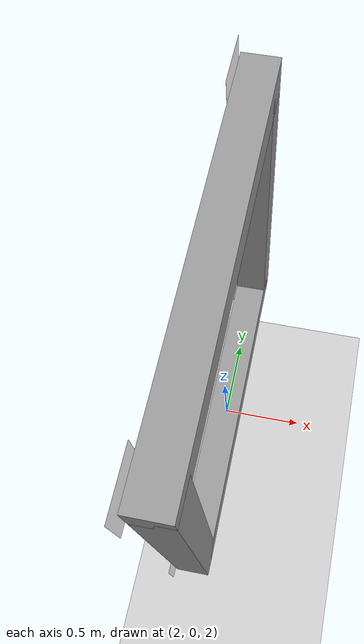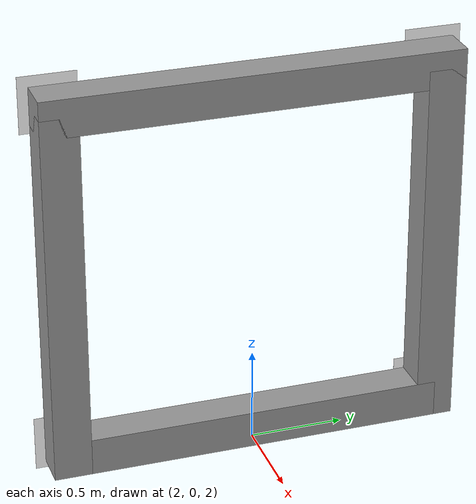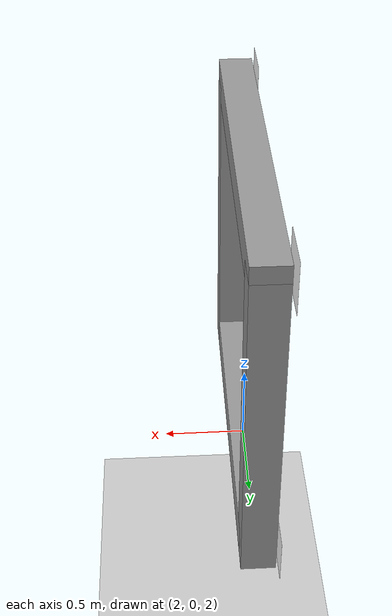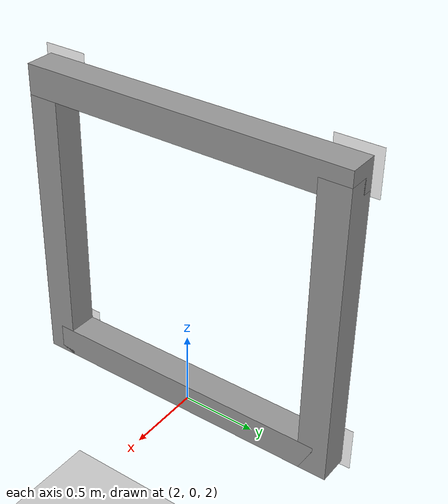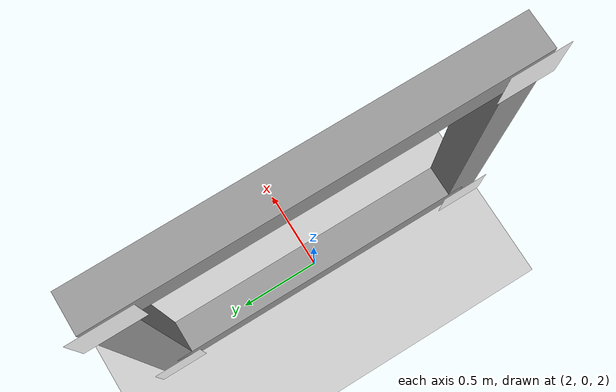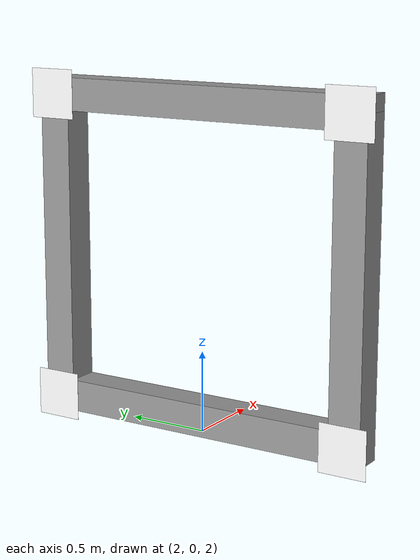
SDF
<?xml version="1.0" encoding="UTF-8"?>
<sdf version="1.9">
  <world name="aruco">
    <physics type="ode">
      <max_step_size>0.004</max_step_size>
      <real_time_factor>1.0</real_time_factor>
      <real_time_update_rate>250</real_time_update_rate>
    </physics>
    <gravity>0 0 -9.8</gravity>
    <magnetic_field>6e-06 2.3e-05 -4.2e-05</magnetic_field>
    <atmosphere type="adiabatic"/>
    <scene>
      <grid>false</grid>
      <ambient>0.4 0.4 0.4 1</ambient>
      <background>0.7 0.7 0.7 1</background>
      <shadows>true</shadows>
    </scene>
    <model name="ground_plane">
      <static>true</static>
      <link name="link">
        <collision name="collision">
          <geometry>
            <plane>
              <normal>0 0 1</normal>
              <size>1 1</size>
            </plane>
          </geometry>
          <surface>
            <friction>
              <ode/>
            </friction>
            <bounce/>
            <contact/>
          </surface>
        </collision>
        <visual name="visual">
          <geometry>
            <plane>
              <normal>0 0 1</normal>
              <size>100 100</size>
            </plane>
          </geometry>
          <material>
            <ambient>0.8 0.8 0.8 1</ambient>
            <diffuse>0.8 0.8 0.8 1</diffuse>
            <specular>0.8 0.8 0.8 1</specular>
          </material>
        </visual>
        <pose>0 0 0 0 -0 0</pose>
        <inertial>
          <pose>0 0 0 0 -0 0</pose>
          <mass>1</mass>
          <inertia>
            <ixx>1</ixx>
            <ixy>0</ixy>
            <ixz>0</ixz>
            <iyy>1</iyy>
            <iyz>0</iyz>
            <izz>1</izz>
          </inertia>
        </inertial>
        <enable_wind>false</enable_wind>
      </link>
      <pose>0 0 0 0 -0 0</pose>
      <self_collide>false</self_collide>
    </model>
    <light name="sunUTC" type="directional">
      <pose>0 0 500 0 -0 0</pose>
      <cast_shadows>true</cast_shadows>
      <intensity>1</intensity>
      <direction>0.001 0.625 -0.78</direction>
      <diffuse>0.904 0.904 0.904 1</diffuse>
      <specular>0.271 0.271 0.271 1</specular>
      <attenuation>
        <range>2000</range>
        <linear>0</linear>
        <constant>1</constant>
        <quadratic>0</quadratic>
      </attenuation>
      <spot>
        <inner_angle>0</inner_angle>
        <outer_angle>0</outer_angle>
        <falloff>0</falloff>
      </spot>
    </light>

    <model name="gate">
      <static>true</static>

      <link name="left_post">
        <pose>2 -1.0 3.0 0 0 0</pose>
        <collision name="collision">
          <geometry>
            <box>
              <size>0.2 0.2 2.0</size>
            </box>
          </geometry>
        </collision>
        <visual name="visual">
          <geometry>
            <box>
              <size>0.2 0.2 2.0</size>
            </box>
          </geometry>
          <material>
            <ambient>0.6 0.6 0.6 1</ambient>
            <diffuse>0.6 0.6 0.6 1</diffuse>
            <specular>0.4 0.4 0.4 1</specular>
          </material>
        </visual>
      </link>

      <link name="right_post">
        <pose>2 1.0 3.0 0 0 0</pose>
        <collision name="collision">
          <geometry>
            <box>
              <size>0.2 0.2 2.0</size>
            </box>
          </geometry>
        </collision>
        <visual name="visual">
          <geometry>
            <box>
              <size>0.2 0.2 2.0</size>
            </box>
          </geometry>
          <material>
            <ambient>0.6 0.6 0.6 1</ambient>
            <diffuse>0.6 0.6 0.6 1</diffuse>
            <specular>0.4 0.4 0.4 1</specular>
          </material>
        </visual>
      </link>

      <link name="top_bar">
        <pose>2 0 4.0 0 0 0</pose>
        <collision name="collision">
          <geometry>
            <box>
              <size>0.2 2.2 0.2</size>
            </box>
          </geometry>
        </collision>
        <visual name="visual">
          <geometry>
            <box>
              <size>0.2 2.2 0.2</size>
            </box>
          </geometry>
          <material>
            <ambient>0.6 0.6 0.6 1</ambient>
            <diffuse>0.6 0.6 0.6 1</diffuse>
            <specular>0.4 0.4 0.4 1</specular>
          </material>
        </visual>
      </link>

      <link name="bottom_bar">
        <pose>2 0 2.1 0 0 0</pose>
        <collision name="collision">
          <geometry>
            <box>
              <size>0.2 2 0.2</size>
            </box>
          </geometry>
        </collision>
        <visual name="visual">
          <geometry>
            <box>
              <size>0.2 2 0.2</size>
            </box>
          </geometry>
          <material>
            <ambient>0.6 0.6 0.6 1</ambient>
            <diffuse>0.6 0.6 0.6 1</diffuse>
            <specular>0.4 0.4 0.4 1</specular>
          </material>
        </visual>
      </link>
    </model>

    <include>
      <uri>model://arucotag/0</uri>
      <pose>1.88 1.0 4.0 0 -1.5708 0</pose>
      <name>aruco_top_left</name>
    </include>

    <include>
      <uri>model://arucotag/1</uri>
      <pose>1.88 -1.0 4.0 0 -1.5708 0</pose>
      <name>aruco_top_right</name>
    </include>

    <include>
      <uri>model://arucotag/2</uri>
      <pose>1.88 1.0 2.1 0 -1.5708 0</pose>
      <name>aruco_bottom_left</name>
    </include>

    <include>
      <uri>model://arucotag/3</uri>
      <pose>1.88 -1.0 2.1 0 -1.5708 0</pose>
      <name>aruco_bottom_right</name>
    </include>

    <spherical_coordinates>
      <surface_model>EARTH_WGS84</surface_model>
      <world_frame_orientation>ENU</world_frame_orientation>
      <latitude_deg>47.397971057728974</latitude_deg>
      <longitude_deg>8.546163739800146</longitude_deg>
      <elevation>0</elevation>
    </spherical_coordinates>
  </world>
</sdf>

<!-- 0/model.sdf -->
<sdf version='1.9'>
  <model name='arucotag0'>
    <static>true</static>
    <pose>0 0 0.001 0 0 0</pose>
    <link name='base'>
      <visual name='base_visual'>
        <geometry>
          <plane>
            <normal>0 0 1</normal>
            <size>0.3 0.3</size>
          </plane>
        </geometry>
        <material>
          <diffuse>1 1 1 1</diffuse>
          <specular>0.4 0.4 0.4 1</specular>
          <pbr>
            <metal>
              <albedo_map>model://arucotag/0/5x5_1000-0.png</albedo_map>
            </metal>
          </pbr>
        </material>
      </visual>
    </link>
  </model>
</sdf>

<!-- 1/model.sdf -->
<sdf version='1.9'>
  <model name='arucotag1'>
    <static>true</static>
    <pose>0 0 0.001 0 0 0</pose>
    <link name='base'>
      <visual name='base_visual'>
        <geometry>
          <plane>
            <normal>0 0 1</normal>
            <size>0.3 0.3</size>
          </plane>
        </geometry>
        <material>
          <diffuse>1 1 1 1</diffuse>
          <specular>0.4 0.4 0.4 1</specular>
          <pbr>
            <metal>
              <albedo_map>model://arucotag/1/5x5_1000-1.png</albedo_map>
            </metal>
          </pbr>
        </material>
      </visual>
    </link>
  </model>
</sdf>

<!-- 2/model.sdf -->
<sdf version='1.9'>
  <model name='arucotag2'>
    <static>true</static>
    <pose>0 0 0.001 0 0 0</pose>
    <link name='base'>
      <visual name='base_visual'>
        <geometry>
          <plane>
            <normal>0 0 1</normal>
            <size>0.3 0.3</size>
          </plane>
        </geometry>
        <material>
          <diffuse>1 1 1 1</diffuse>
          <specular>0.4 0.4 0.4 1</specular>
          <pbr>
            <metal>
              <albedo_map>model://arucotag/2/5x5_1000-2.png</albedo_map>
            </metal>
          </pbr>
        </material>
      </visual>
    </link>
  </model>
</sdf>

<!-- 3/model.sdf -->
<sdf version='1.9'>
  <model name='arucotag3'>
    <static>true</static>
    <pose>0 0 0.001 0 0 0</pose>
    <link name='base'>
      <visual name='base_visual'>
        <geometry>
          <plane>
            <normal>0 0 1</normal>
            <size>0.3 0.3</size>
          </plane>
        </geometry>
        <material>
          <diffuse>1 1 1 1</diffuse>
          <specular>0.4 0.4 0.4 1</specular>
          <pbr>
            <metal>
              <albedo_map>model://arucotag/3/5x5_1000-3.png</albedo_map>
            </metal>
          </pbr>
        </material>
      </visual>
    </link>
  </model>
</sdf>
